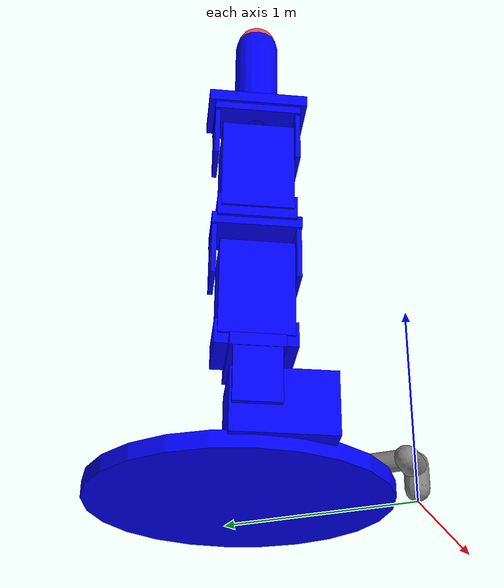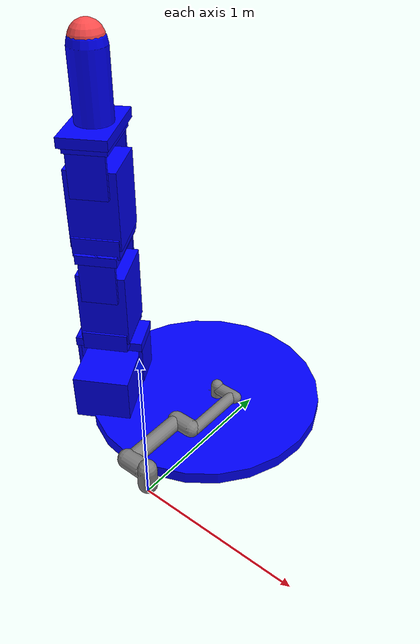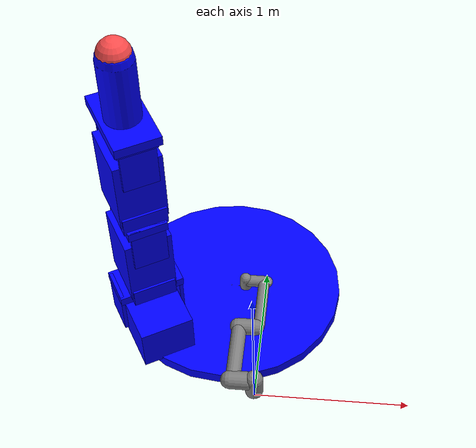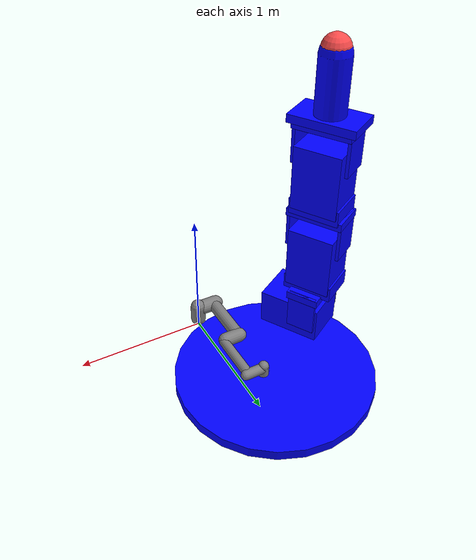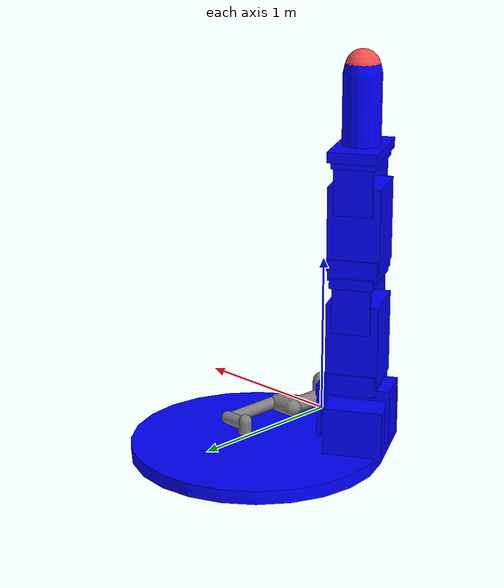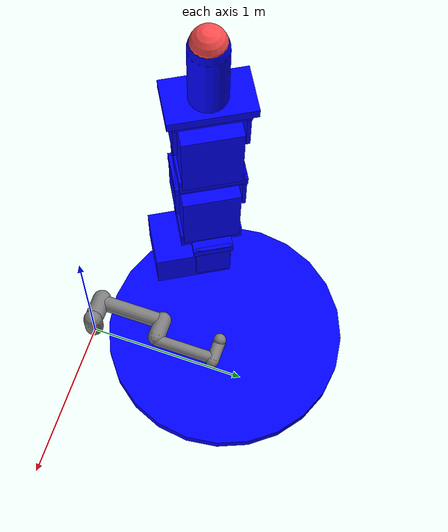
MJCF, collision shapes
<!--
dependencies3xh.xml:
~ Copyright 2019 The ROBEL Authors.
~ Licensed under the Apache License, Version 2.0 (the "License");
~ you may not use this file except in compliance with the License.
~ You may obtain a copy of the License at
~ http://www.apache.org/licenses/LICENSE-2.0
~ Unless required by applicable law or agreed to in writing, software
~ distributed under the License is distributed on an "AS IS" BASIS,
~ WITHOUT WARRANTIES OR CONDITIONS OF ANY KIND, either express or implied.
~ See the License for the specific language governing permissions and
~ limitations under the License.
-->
<mujoco model="ur5e">
  <compiler angle="radian" meshdir="assets" autolimits="true"/>
  <option integrator="implicitfast"/>
  <include file="./assets/dependencies3xh.xml"/>
  <default>
    <default class="ur5e">
      <material specular="0.5" shininess="0.25"/>
      <joint axis="0 1 0" range="-6.28319 6.28319" armature="0.1"/>
      <general gaintype="fixed" biastype="affine" ctrlrange="-6.2831 6.2831" gainprm="2000" biasprm="0 -2000 -400"
        forcerange="-150 150"/>
      <default class="size3">
        <default class="size3_limited">
          <joint range="-3.1415 3.1415"/>
          <general ctrlrange="-3.1415 3.1415"/>
        </default>
      </default>
      <default class="size1">
        <general gainprm="500" biasprm="0 -500 -100" forcerange="-28 28"/>
      </default>
      <default class="visual">
        <geom type="mesh" contype="0" conaffinity="0" group="2"/>
      </default>
      <default class="collision">
        <geom type="capsule" group="3"/>
        <default class="eef_collision">
          <geom type="cylinder"/>
          <default class="gripper">
            <geom/>
          </default>
        </default>
      </default>
      <site size="0.001" rgba="0.5 0.5 0.5 0.3" group="4"/>
    </default>
  </default>

  <asset>
    <material class="ur5e" name="black" rgba="0.033 0.033 0.033 1"/>
    <material class="ur5e" name="jointgray" rgba="0.278 0.278 0.278 1"/>
    <material class="ur5e" name="linkgray" rgba="0.82 0.82 0.82 1"/>
    <material class="ur5e" name="urblue" rgba="0.49 0.678 0.8 1"/>

    <mesh file="base_0.obj"/>
    <mesh file="base_1.obj"/>
    <mesh file="shoulder_0.obj"/>
    <mesh file="shoulder_1.obj"/>
    <mesh file="shoulder_2.obj"/>
    <mesh file="upperarm_0.obj"/>
    <mesh file="upperarm_1.obj"/>
    <mesh file="upperarm_2.obj"/>
    <mesh file="upperarm_3.obj"/>
    <mesh file="forearm_0.obj"/>
    <mesh file="forearm_1.obj"/>
    <mesh file="forearm_2.obj"/>
    <mesh file="forearm_3.obj"/>
    <mesh file="wrist1_0.obj"/>
    <mesh file="wrist1_1.obj"/>
    <mesh file="wrist1_2.obj"/>
    <mesh file="wrist2_0.obj"/>
    <mesh file="wrist2_1.obj"/>
    <mesh file="wrist2_2.obj"/>
    <mesh file="wrist3.obj"/>
  </asset>

  <worldbody>
    <light name="spotlight" mode="targetbodycom" target="wrist_2_link" pos="0 -1 2"/>
    <body name="base" quat="1 0 0 1" childclass="ur5e">
      <inertial mass="4.0" pos="0 0 0" diaginertia="0.00443333156 0.00443333156 0.0072"/>
      <geom mesh="base_0" material="black" class="visual"/>
      <geom mesh="base_1" material="jointgray" class="visual"/>
      <body name="shoulder_link" pos="0 0 0.163">
        <inertial mass="3.7" pos="0 0 0" diaginertia="0.0102675 0.0102675 0.00666"/>
        <joint name="shoulder_pan_joint" class="size3" axis="0 0 1"/>
        <geom mesh="shoulder_0" material="urblue" class="visual"/>
        <geom mesh="shoulder_1" material="black" class="visual"/>
        <geom mesh="shoulder_2" material="jointgray" class="visual"/>
        <geom class="collision" size="0.06 0.06" pos="0 0 -0.04"/>
        <body name="upper_arm_link" pos="0 0.138 0" quat="1 0 1 0">
          <inertial mass="8.393" pos="0 0 0.2125" diaginertia="0.133886 0.133886 0.0151074"/>
          <joint name="shoulder_lift_joint" class="size3"/>
          <geom mesh="upperarm_0" material="linkgray" class="visual"/>
          <geom mesh="upperarm_1" material="black" class="visual"/>
          <geom mesh="upperarm_2" material="jointgray" class="visual"/>
          <geom mesh="upperarm_3" material="urblue" class="visual"/>
          <geom class="collision" pos="0 -0.04 0" quat="1 1 0 0" size="0.06 0.06"/>
          <geom class="collision" size="0.05 0.2" pos="0 0 0.2"/>
          <body name="forearm_link" pos="0 -0.131 0.425">
            <inertial mass="2.275" pos="0 0 0.196" diaginertia="0.0311796 0.0311796 0.004095"/>
            <joint name="elbow_joint" class="size3_limited"/>
            <geom mesh="forearm_0" material="urblue" class="visual"/>
            <geom mesh="forearm_1" material="linkgray" class="visual"/>
            <geom mesh="forearm_2" material="black" class="visual"/>
            <geom mesh="forearm_3" material="jointgray" class="visual"/>
            <geom class="collision" pos="0 0.08 0" quat="1 1 0 0" size="0.055 0.06"/>
            <geom class="collision" size="0.038 0.19" pos="0 0 0.2"/>
            <body name="wrist_1_link" pos="0 0 0.392" quat="1 0 1 0">
              <inertial mass="1.219" pos="0 0.127 0" diaginertia="0.0025599 0.0025599 0.0021942"/>
              <joint name="wrist_1_joint" class="size1"/>
              <geom mesh="wrist1_0" material="black" class="visual"/>
              <geom mesh="wrist1_1" material="urblue" class="visual"/>
              <geom mesh="wrist1_2" material="jointgray" class="visual"/>
              <geom class="collision" pos="0 0.05 0" quat="1 1 0 0" size="0.04 0.07"/>
              <body name="wrist_2_link" pos="0 0.127 0">
                <inertial mass="1.219" pos="0 0 0.1" diaginertia="0.0025599 0.0025599 0.0021942"/>
                <joint name="wrist_2_joint" axis="0 0 1" class="size1"/>
                <geom mesh="wrist2_0" material="black" class="visual"/>
                <geom mesh="wrist2_1" material="urblue" class="visual"/>
                <geom mesh="wrist2_2" material="jointgray" class="visual"/>
                <geom class="collision" size="0.04 0.06" pos="0 0 0.04"/>
                <geom class="collision" pos="0 0.02 0.1" quat="1 1 0 0" size="0.04 0.04"/>
                <body name="wrist_3_link" pos="0 0 0.1">
                  <inertial mass="0.1889" pos="0 0.0771683 0" quat="1 0 0 1"
                    diaginertia="0.000132134 9.90863e-05 9.90863e-05"/>
                  <joint name="wrist_3_joint" class="size1"/>
                  <geom material="linkgray" mesh="wrist3" class="visual"/>
                  <geom class="eef_collision" pos="0 0.08 0" quat="1 1 0 0" size="0.04 0.02"/>
                  <site name="attachment_site" pos="0 0.1 0" quat="-1 1 0 0"/>
                  <body name="mount" pos="0 0.1 0.">
                    <include file="assets/chain3xh.xml"/>
	                </body>
                </body>
              </body>
            </body>
          </body>
        </body>
      </body>
    </body>
  </worldbody>

  <actuator>
    <general class="size3" name="shoulder_pan" joint="shoulder_pan_joint"/>
    <general class="size3" name="shoulder_lift" joint="shoulder_lift_joint"/>
    <general class="size3_limited" name="elbow" joint="elbow_joint"/>
    <general class="size1" name="wrist_1" joint="wrist_1_joint"/>
    <general class="size1" name="wrist_2" joint="wrist_2_joint"/>
    <general class="size1" name="wrist_3" joint="wrist_3_joint"/>
  </actuator>

  <keyframe>
    <key name="home" qpos="-1.5708 -1.5708 1.5708 -1.5708 -1.5708 0 0 0 0 0 0 0 0 0 0" ctrl="-1.5708 -1.5708 1.5708 -1.5708 -1.5708 0 0 0 0 0 0 0 0 0 0"/>
  </keyframe>
</mujoco>

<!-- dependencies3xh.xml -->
<mujocoinclude>
  <compiler angle="radian" inertiafromgeom="auto" inertiagrouprange="3 5"/>
  <option timestep="0.0025" iterations="50" tolerance="1e-10" solver="Newton" jacobian="dense" cone="elliptic"/>
  <asset>
    <mesh name="xh28" file="../dclaw/meshes/xh_base_high_poly.stl" scale=".001 .001 .001"/>
    <mesh name="acrylic_circle" file="../dclaw/meshes/acrylic_circle.stl" scale=".1 .1 .1"/>
    <mesh name="plastic_finger" file="../dclaw/meshes/xh_finger_tip.stl" scale=".001 .001 .001"/>
    <mesh name="metal_clamping" file="../dclaw/meshes/xh_clamping_high_poly.stl" scale=".001 .001 .001"/>
    <mesh name="metal_clamping_small" file="../meshes/xh_clamping_small_high_poly.stl" scale=".001 .001 .001"/>
    <mesh name="plastic_top" file="../dclaw/meshes/xh_white_top_high_poly.stl" scale=".001 .001 .001"/>
    <mesh name="xh28_hull" file="../dclaw/meshes/xh_base_hull.stl" scale=".001 .001 .001"/>
    <mesh name="xh28_hull_top" file="../dclaw/meshes/xh_base_hull_top.stl" scale=".001 .001 .001"/>
  </asset>
  <default>
    <default class="dclaw3xh">
      <joint limited="true" damping=".1" armature="0.001"/>
      <geom contype="0" conaffinity="0" condim="4" group="1" margin="0.0005" material="metal_black" type="mesh"/>
      <motor ctrlrange="-1.57 1.57" ctrllimited="true"/>
      <site group="1"/>
      <default class="overlay">
        <geom contype="0" conaffinity="0" group="3" type="mesh" material="greenish"/>
        <joint damping="100" frictionloss="100" armature="0"/>
        <site group="3"/>
      </default>
      <default class="phy_metal">
        <geom contype="1" conaffinity="1" group="4" type="mesh" rgba="0.0 0.0 1.0 .3"/>
        <site group="4"/>
      </default>
      <default class="phy_plastic">
        <geom contype="1" conaffinity="1" group="4" type="mesh" rgba="0.0 0.0 1.0 .3" friction=".2 0.005 0.0001"/>
        <site group="4"/>
      </default>
    </default>
  </default>
  <asset>
    <material name="metal_black" specular="1" shininess="1" rgba="0.2 0.2 0.2 1.0"/>
    <material name="metal_grey" specular="1" shininess="1" rgba="0.5 0.5 0.5 1.0"/>
    <material name="plastic" specular="0.3" shininess="0" rgba="1 1 1 1"/>
    <material name="acrylic" specular="0.3" shininess="0" rgba="1 1 1 .2"/>
    <material name="greenish" specular="0.0" shininess="0" rgba="0.3 1 0.3 1"/>
  </asset>
  <actuator>
    <position name="FFJ10" kp="2" joint="FFJ10" class="dclaw3xh" ctrlrange="-.48 .48"/>
    <position name="FFJ11" kp="2" joint="FFJ11" class="dclaw3xh"/>
    <position name="FFJ12" kp="2" joint="FFJ12" class="dclaw3xh"/>
    <position name="MFJ20" kp="2" joint="MFJ20" class="dclaw3xh" ctrlrange="-.48 .48"/>
    <position name="MFJ21" kp="2" joint="MFJ21" class="dclaw3xh"/>
    <position name="MFJ22" kp="2" joint="MFJ22" class="dclaw3xh"/>
    <position name="THJ30" kp="2" joint="THJ30" class="dclaw3xh" ctrlrange="-.48 .48"/>
    <position name="THJ31" kp="2" joint="THJ31" class="dclaw3xh"/>
    <position name="THJ32" kp="2" joint="THJ32" class="dclaw3xh"/>
  </actuator>
  <sensor>
    <jointpos name="FFJ10_pos_sensor" joint="FFJ10"/>
    <jointpos name="FFJ11_pos_sensor" joint="FFJ11"/>
    <jointpos name="FFJ12_pos_sensor" joint="FFJ12"/>
    <jointpos name="MFJ20_pos_sensor" joint="MFJ20"/>
    <jointpos name="MFJ21_pos_sensor" joint="MFJ21"/>
    <jointpos name="MFJ22_pos_sensor" joint="MFJ22"/>
    <jointpos name="THJ30_pos_sensor" joint="THJ30"/>
    <jointpos name="THJ31_pos_sensor" joint="THJ31"/>
    <jointpos name="THJ32_pos_sensor" joint="THJ32"/>
    <jointvel name="FFJ10_velocity_sensor" joint="FFJ10"/>
    <jointvel name="FFJ11_velocity_sensor" joint="FFJ11"/>
    <jointvel name="FFJ12_velocity_sensor" joint="FFJ12"/>
    <jointvel name="MFJ20_velocity_sensor" joint="MFJ20"/>
    <jointvel name="MFJ21_velocity_sensor" joint="MFJ21"/>
    <jointvel name="MFJ22_velocity_sensor" joint="MFJ22"/>
    <jointvel name="THJ30_velocity_sensor" joint="THJ30"/>
    <jointvel name="THJ31_velocity_sensor" joint="THJ31"/>
    <jointvel name="THJ32_velocity_sensor" joint="THJ32"/>
  </sensor>
</mujocoinclude>

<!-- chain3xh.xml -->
<mujocoinclude>
  <body name="dClaw" euler="3.14 0 0" childclass="dclaw3xh">
    <geom material="acrylic" mesh="acrylic_circle"/>
    <geom class="phy_metal" type="cylinder" size="0.75 0.04" mass="1.1"/>
    <site name="S_grasp" pos="0 0 2.4" type="sphere" size="0.1" group="4"/>

    <!-- INDEX/FIRST FINGER -->
    <body name="FFbase" pos=".3 -0.52 .03" euler="0 0 .52">
      <geom mesh="xh28" pos="0 0 0.1425" euler="1.57 0 1.57"/>
      <geom class="phy_metal" type="box" pos=".12 0 0.14" size="0.24 0.175 0.15" mass="0.93"/>
      <body name="FF10" pos="0 0 0.1425" euler="0 0 3.14">
        <geom mesh="metal_clamping" euler="0 0 1.57"/>
        <geom mesh="metal_clamping_small" pos="0 0 0.55" euler="3.14 0 0"/>
        <geom mesh="xh28" pos="0 0 0.68" euler="1.57 1.57 0"/>
        <geom class="phy_metal" type="box" pos="0 0 0.56" size="0.175 0.15 0.24" mass="0.93"/>
        <geom class="phy_metal" type="box" pos="0.0 0 0.26" size="0.125 0.214 0.03" mass="0.03"/>
        <geom class="phy_metal" type="box" pos="0 0.2 0.13" size="0.11 0.012 0.16" mass="0.02"/>
        <geom class="phy_metal" type="box" pos="0 -0.2 0.13" size="0.11 0.012 0.16" mass="0.02"/>
        <geom class="phy_metal" type="box" pos="0 0 0.33" size="0.19 0.14 0.06" mass="0.05"/>
        <joint name="FFJ10" type="hinge" axis="0 1 0" range="-4.5 13.5"/>
        <body name="FFL11" pos="0 0 0.675">
          <geom mesh="metal_clamping_small" pos="0 0 0.55" euler="3.14 0 0"/>
          <geom mesh="xh28" pos="0 0 0.686" euler="1.57 1.57 0"/>
          <geom mesh="metal_clamping"/>
          <geom class="phy_metal" type="box" pos="0 0 0.56" size="0.175 0.15 0.24" mass="0.93"/>
          <geom class="phy_metal" type="box" pos="0 0 0.26" size="0.214 0.125 0.03" mass="0.03"/>
          <geom class="phy_metal" type="box" pos="0.2 0 0.13" size="0.012 0.11 0.16" mass="0.20"/>
          <geom class="phy_metal" type="box" pos="-0.2 0 0.13" size="0.012 0.11 0.16" mass="0.02"/>
          <geom class="phy_metal" type="box" pos="0 0 0.33" size="0.19 0.14 0.06" mass="0.5"/>
          <joint name="FFJ11" type="hinge" axis="1 0 0" range="-2 2"/>
          <body name="FFL12" pos="0 0 0.68">
            <geom mesh="metal_clamping"/>
            <geom material="plastic" mesh="plastic_finger" pos="0 0 0.46"/>
            <geom class="phy_metal" type="box" pos="0.0 0 0.26" size="0.214 0.125 0.03" mass="0.03"/>
            <geom class="phy_metal" type="box" pos="0.2 0 0.13" size="0.012 0.11 0.16" mass="0.02"/>
            <geom class="phy_metal" type="box" pos="-0.2 0 0.13" size="0.012 0.11 0.16" mass="0.02"/>
            <geom class="phy_plastic" type="capsule" pos="0 0 0.53" size="0.11 0.2" mass="0.18"/>
            <geom class="phy_plastic" type="box" pos="0 0 0.3" size="0.245 0.14 0.03" mass="0.07"/>
            <joint name="FFJ12" type="hinge" axis="1 0 0" range="-2 2"/>
            <site name="FFtip" type="sphere" pos="0 0 .76" size="0.1" rgba="1 .3 .3 1"/>
          </body>
        </body>
      </body>
    </body>
  </body>
</mujocoinclude>
